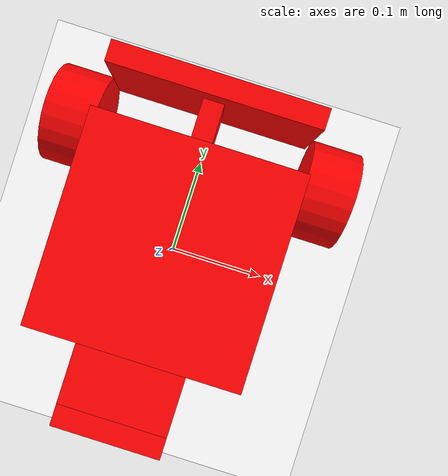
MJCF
<?xml version="1.0" encoding="utf-8"?>
<mujoco><size njmax="3000" nconmax="1000"></size><option timestep="0.004"></option><default><geom condim="6" density="5" rgba="1 0 0 1" size=".05" type="sphere"></geom><joint damping=".001"></joint><motor ctrlrange="-1 1" ctrllimited="true" forcerange="-.02 .02" forcelimited="true"></motor><site size="0.032" type="sphere"></site></default><worldbody><geom name="floor" size="3.5 3.5 0.1" type="plane" condim="6" rgba="1 1 1 1" material="MatPlane"></geom><body name="robot" pos="0 0 .1"><site name="robot" pos="0 0 0"></site><camera name="vision" pos="0 0.1 .2" xyaxes="-1 0 0 0 -.4 1"></camera><joint type="free" name="robot" damping="0"></joint><geom name="robot" type="box" size=".1 .1 .05"></geom><geom name="back_bumper" type="box" pos="0 .15 0" size=".1 .01 .05"></geom><geom name="back_connector" type="box" pos="0 .125 0" size=".01 .025 .03"></geom><geom name="front_bumper" type="box" pos="0 -.165 0" size=".05 .01 .05"></geom><geom name="front_connector" type="box" pos="0 -.13 .04" size=".05 .03 .01"></geom><body name="left" pos="-.1 .1 -.05"><joint type="hinge" name="left" axis="1 0 0"></joint><geom type="cylinder" name="left" fromto="-.055 0 0 -0.005 0 0"></geom></body><body name="right" pos=".1 .1 -.05"><joint type="hinge" name="right" axis="1 0 0"></joint><geom type="cylinder" name="right" fromto="0.005 0 0 .055 0 0"></geom></body><body name="rear" pos="0 -.1 -.05"><joint name="rear" type="ball"></joint><geom name="rear"></geom></body></body><light cutoff="100" diffuse="1 1 1" dir="0 0 -1" directional="true" exponent="1" pos="0 0 0.5" specular="0 0 0" castshadow="false"></light><camera name="fixednear" pos="0 -2 2" zaxis="0 -1 1"></camera><camera name="fixedfar" pos="0 -5 5" zaxis="0 -1 1"></camera></worldbody><sensor><ballquat joint="rear" name="ballquat_rear"></ballquat><ballangvel joint="rear" name="ballangvel_rear"></ballangvel><accelerometer site="robot" name="accelerometer"></accelerometer><velocimeter site="robot" name="velocimeter"></velocimeter><gyro site="robot" name="gyro"></gyro><magnetometer site="robot" name="magnetometer"></magnetometer><subtreecom body="robot" name="subtreecom"></subtreecom><subtreelinvel body="robot" name="subtreelinvel"></subtreelinvel><subtreeangmom body="robot" name="subtreeangmom"></subtreeangmom></sensor><actuator><motor gear="1" jointinparent="left" name="left"></motor><motor gear="1" jointinparent="right" name="right"></motor></actuator><asset><texture type="skybox" builtin="gradient" rgb1="0.527 0.582 0.906" rgb2="0.1 0.1 0.35" width="800" height="800" markrgb="1 1 1" mark="random" random="0.001"></texture><texture name="texplane" builtin="checker" height="100" width="100" rgb1="0.7 0.7 0.7" rgb2="0.8 0.8 0.8" type="2d"></texture><material name="MatPlane" reflectance="0.1" shininess="0.1" specular="0.1" texrepeat="10 10" texture="texplane"></material></asset></mujoco>
